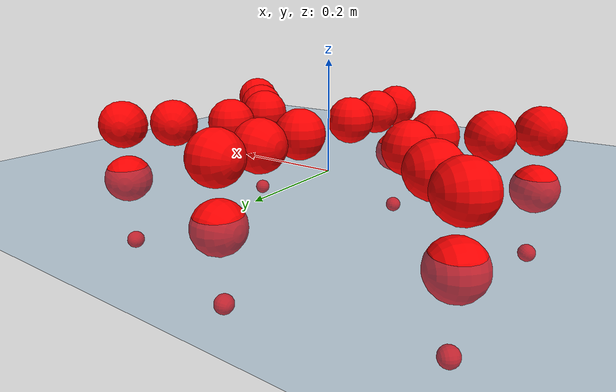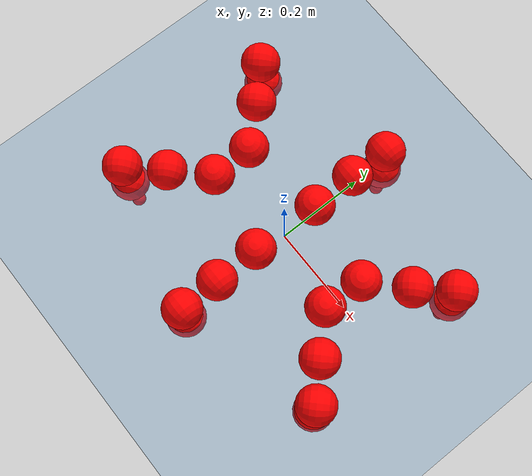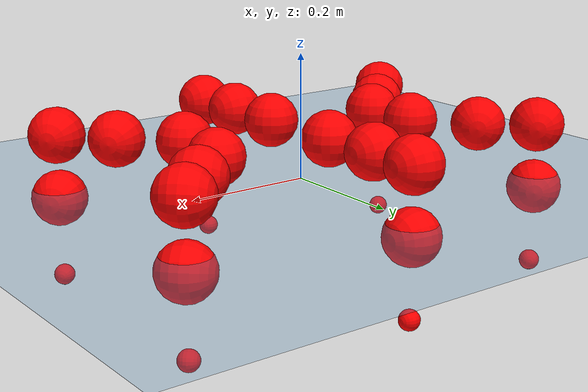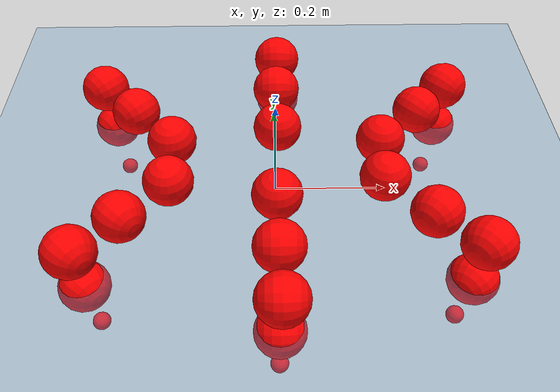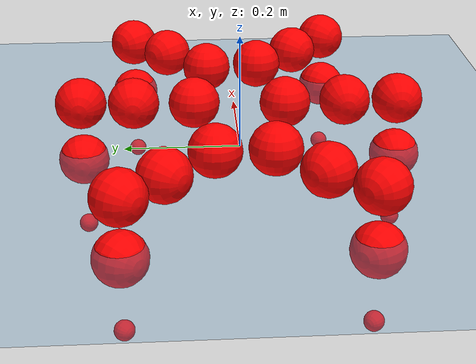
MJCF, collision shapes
<mujoco model="Golem">
  <compiler angle="radian" assetdir="assets" balanceinertia="true" inertiafromgeom="false"/>

  <option timestep="0.005" density="1.2" viscosity="2e-05"/>

  <size nkey="1"/>

  <visual>
    <quality shadowsize="8192"/>
    <map shadowclip="0.5"/>
  </visual>

  <default>
    <default class="/">
      <joint armature="0.01" damping="0.01" frictionloss="0.01"/>
      <geom contype="0" conaffinity="0" group="1" solref="-1000 -80"/>
      <site size="0.01 0.005 0.005" group="5"/>
      <general forcelimited="true" biastype="affine" gainprm="25" biasprm="0 -25 -0.5"/>
      <default class="visual">
        <geom type="mesh" group="2"/>
      </default>
      <default class="collision">
        <geom group="3"/>
      </default>
      <default class="foot">
        <geom size="0.01 0 0" condim="6" group="4" priority="1" solimp="0.015 1 0.01"/>
      </default>
      <default class="reward_collision_sphere">
        <geom group="5" rgba="1 0 0 1"/>
      </default>
    </default>
  </default>

  <asset>
    <texture type="skybox" colorspace="auto" name="//unnamed_texture_0" builtin="gradient" rgb1="0.95 0.95 0.95" rgb2="0.95 0.95 0.95" width="100" height="600"/>
    <texture type="2d" colorspace="auto" name="texplane" builtin="checker" rgb1="0.345 0.575 0.748" rgb2="0.345 0.575 0.748" markrgb="1 1 1" width="512" height="512"/>
    <material name="MatPlane" class="/" texture="texplane" texuniform="true" texrepeat="2 2" specular="0.9"/>
    <mesh name="body" class="/" file="body.stl" scale="0.001 0.001 0.001"/>
    <mesh name="coxa" class="/" file="coxa.stl" scale="0.001 0.001 0.001"/>
    <mesh name="femur" class="/" file="femur.stl" scale="0.001 0.001 0.001"/>
    <mesh name="tibia" class="/" file="tibia.stl" scale="0.001 0.001 0.001"/>
    <mesh name="tarsus" class="/" file="tarsus.stl" scale="0.001 0.001 0.001"/>
  </asset>

  <worldbody>
    <geom name="floor" class="/" size="100 100 0.125" type="plane" group="0" material="MatPlane"/>
    <light name="toplight_shadow" class="/" pos="0 0 5" dir="0.0990148 0.0990148 -0.990148" type="directional" ambient="0.04 0.04 0.04" diffuse="0.55 0.55 0.55" specular="0.12 0.12 0.12"/>
    <light name="toplight_fill" class="/" pos="0 0 5" dir="0.0990148 0.0990148 -0.990148" type="directional" castshadow="false" ambient="0.04 0.04 0.04" diffuse="0.3 0.3 0.3" specular="0.08 0.08 0.08"/>
    <body name="trunk" pos="0.00270394 0.0016109 0.00124468" quat="1 -7.95374e-05 1.12801e-05 -3.99493e-06">
      <inertial pos="-0.00041404 -0.00119083 -0.00128191" quat="0.999996 -0.00208298 0.00163096 0.000639978" mass="4.68505" diaginertia="0.0212357 0.0044445 0.028131"/>
      <joint name="//unnamed_joint_0" type="free"/>
      <geom name="//unnamed_geom_1" class="/" pos="0 0 0.0787209" quat="1 0 0 0" type="mesh" rgba="0.9 0.9 0.9 1" mesh="body"/>
      <site name="imu" class="/" pos="0.166273 0.0135867 0.119726" size="0.0108576"/>
      <camera name="track" class="/" pos="0 -1.70694 0" quat="0.707107 0.707107 0 0" mode="trackcom"/>
      <camera name="ego_camera" class="/" pos="0.152595 0 0.123001" quat="-0.5 -0.5 0.5 0.5"/>
      <body name="coxa_RR" pos="-0.209079 -0.0710989 0.0780536" quat="0.38265 -0.000186091 -4.27846e-05 -0.923894">
        <inertial pos="-0.000140328 -0.00258607 6.28454e-05" quat="0.999938 -0.00382993 0.00169931 0.0103487" mass="0.244254" diaginertia="0.0213942 0.00434293 0.0269355"/>
        <joint name="coxa_joint_RR" class="/" pos="0 0 0" axis="0.000230263 0.00158488 -0.999999" range="-3.13366 3.13425" armature="0.00954092" damping="0" frictionloss="0.0109209"/>
        <geom name="//unnamed_geom_2" class="/" type="mesh" rgba="0.2 0.2 0.2 1" mesh="coxa"/>
        <geom name="//unnamed_geom_3" class="reward_collision_sphere" size="0.0434305" pos="-0.0352141 0 0"/>
        <body name="femur_RR" pos="0.0669142 -0.000242467 -0.00305803" quat="0.499999 -0.499977 0.500025 0.499998">
          <inertial pos="-0.000860493 -0.000127416 -0.000509311" quat="0.999996 0.00261999 -0.000592544 0.00101602" mass="0.256032" diaginertia="0.022247 0.00449027 0.0290275"/>
          <joint name="femur_joint_RR" class="/" pos="0 0 0" axis="0.000898395 0.00447104 -0.99999" range="-3.19372 3.09524" armature="0.0113397" damping="0.00809103" frictionloss="0.0122893"/>
          <geom name="//unnamed_geom_4" class="/" type="mesh" rgba="0.9 0.9 0.9 1" mesh="femur"/>
          <geom name="//unnamed_geom_5" class="reward_collision_sphere" size="0.0434305"/>
          <body name="tibia_RR" pos="-0.00361281 -0.0952614 0.00298427" quat="-0.000584748 0.999999 -0.00107845 -0.00018803">
            <inertial pos="-0.00270662 0.00107966 -0.000563669" quat="0.999996 0.00165037 -0.00223756 -0.000158752" mass="0.258508" diaginertia="0.0219411 0.00447862 0.026944"/>
            <joint name="tibia_joint_RR" class="/" pos="0 0 0" axis="0.00678953 0.0099908 0.999927" range="-3.12844 3.17369" armature="0.0114005" damping="0" frictionloss="0.0109098"/>
            <geom name="//unnamed_geom_6" class="/" type="mesh" rgba="0.2 0.2 0.2 1" mesh="tibia"/>
            <geom name="//unnamed_geom_7" class="reward_collision_sphere" size="0.0434305"/>
            <body name="tarsus_RR" pos="0.104863 4.25672e-05 0.00213684" quat="1 2.37194e-05 3.6242e-05 0.000189852">
              <inertial pos="0.0739798 0.00046813 0.000747973" quat="0.503458 0.499666 0.497052 0.499803" mass="0.25678" diaginertia="0.0221755 0.0045927 0.0284053"/>
              <joint name="tarsus_joint_RR" class="/" pos="0 0 0" axis="-0.00349617 -0.000438738 0.999994" range="-3.19251 3.17751" armature="0.011295" damping="0.0450603" frictionloss="0.0104025"/>
              <geom name="//unnamed_geom_8" class="/" type="mesh" rgba="0.9 0.9 0.9 1" mesh="tarsus"/>
              <geom name="foot_1" class="foot" size="0.0109226" pos="0.131466 0 0" quat="0 -0.707107 0 0.707107"/>
              <geom name="//unnamed_geom_10" class="reward_collision_sphere" size="0.0434305"/>
              <geom name="//unnamed_geom_11" class="reward_collision_sphere" size="0.0162864" pos="0.126184 0 0"/>
              <site name="foot_1" class="foot" pos="0.131466 0 0" quat="0 -0.707107 0 0.707107" size="0.0108576"/>
            </body>
          </body>
        </body>
      </body>
      <body name="coxa_RM" pos="-0.000753394 -0.113852 0.0797021" quat="0.706867 -0.000778184 -0.000345942 -0.707346">
        <inertial pos="0.00245031 -0.000172652 -0.000226389" quat="0.999995 -0.000731828 0.00151658 0.00267699" mass="0.254607" diaginertia="0.0219696 0.00438016 0.0288952"/>
        <joint name="coxa_joint_RM" class="/" pos="0 0 0" axis="-0.000979064 -0.00254324 -0.999996" stiffness="0.00459546" range="-3.13889 3.11981" armature="0.0109257" damping="0.000872632" frictionloss="0.00955396"/>
        <geom name="//unnamed_geom_12" class="/" type="mesh" rgba="0.2 0.2 0.2 1" mesh="coxa"/>
        <geom name="//unnamed_geom_13" class="reward_collision_sphere" size="0.0434305" pos="-0.0352141 0 0"/>
        <body name="femur_RM" pos="0.0678531 0.00227245 0.000106401" quat="0.498873 -0.500623 0.500141 0.500361">
          <inertial pos="-0.00099239 -0.000510252 2.42302e-06" quat="0.999999 -0.00058454 0.000562504 0.000685083" mass="0.26289" diaginertia="0.0230412 0.00452499 0.0290904"/>
          <joint name="femur_joint_RM" class="/" pos="0 0 0" axis="-0.00759357 -0.000605496 -0.999971" stiffness="0.00351429" range="-3.14484 3.14346" armature="0.0104225" damping="0.0223123" frictionloss="0.0108012"/>
          <geom name="//unnamed_geom_14" class="/" type="mesh" rgba="0.9 0.9 0.9 1" mesh="femur"/>
          <geom name="//unnamed_geom_15" class="reward_collision_sphere" size="0.0434305"/>
          <body name="tibia_RM" pos="0.000975022 -0.0915829 0.00238628" quat="-0.000146358 1 -7.70615e-05 0.000122244">
            <inertial pos="0.00216103 -0.00281277 0.000615882" quat="0.999907 -0.00880341 -0.00391743 -0.00965339" mass="0.247626" diaginertia="0.0221929 0.00468092 0.0285384"/>
            <joint name="tibia_joint_RM" class="/" pos="0 0 0" axis="0.000574808 0.000747807 1" range="-3.19443 3.18737" armature="0.0106565" damping="0.0160128" frictionloss="0.0103088"/>
            <geom name="//unnamed_geom_16" class="/" type="mesh" rgba="0.2 0.2 0.2 1" mesh="tibia"/>
            <geom name="//unnamed_geom_17" class="reward_collision_sphere" size="0.0434305"/>
            <body name="tarsus_RM" pos="0.10305 0.000173619 0.00237588" quat="1 -2.0866e-06 -0.000182375 -5.73128e-05">
              <inertial pos="0.0695812 -0.00155392 0.00265051" quat="0.500505 0.508518 0.489794 0.501005" mass="0.263866" diaginertia="0.0214696 0.0044234 0.0271974"/>
              <joint name="tarsus_joint_RM" class="/" pos="0 0 0" axis="-5.19197e-05 0.00199207 0.999998" range="-3.10199 3.15344" armature="0.0111035" damping="0.00630695" frictionloss="0.0107904"/>
              <geom name="//unnamed_geom_18" class="/" type="mesh" rgba="0.9 0.9 0.9 1" mesh="tarsus"/>
              <geom name="foot_2" class="foot" size="0.0105829" pos="0.131466 0 0" quat="0 -0.707107 0 0.707107"/>
              <geom name="//unnamed_geom_20" class="reward_collision_sphere" size="0.0434305"/>
              <geom name="//unnamed_geom_21" class="reward_collision_sphere" size="0.0162864" pos="0.126184 0 0"/>
              <site name="foot_2" class="foot" pos="0.131466 0 0" quat="0 -0.707107 0 0.707107" size="0.0108576"/>
            </body>
          </body>
        </body>
      </body>
      <body name="coxa_RF" pos="0.207875 -0.0683883 0.0814849" quat="0.923833 -4.46277e-05 0.000367652 -0.382796">
        <inertial pos="0.000702293 0.00137685 0.0006644" quat="0.999999 -0.000496278 -0.00095721 -0.00033048" mass="0.253399" diaginertia="0.0222361 0.00447019 0.0277232"/>
        <joint name="coxa_joint_RF" class="/" pos="0 0 0" axis="0.00141316 0.000148607 -0.999999" stiffness="0.000109982" range="-3.12819 3.11974" armature="0.0123004" damping="0.00245365" frictionloss="0.0108947"/>
        <geom name="//unnamed_geom_22" class="/" type="mesh" rgba="0.2 0.2 0.2 1" mesh="coxa"/>
        <geom name="//unnamed_geom_23" class="reward_collision_sphere" size="0.0434305" pos="-0.0352141 0 0"/>
        <body name="femur_RF" pos="0.0704618 -0.000111023 -0.00171332" quat="0.499973 -0.500001 0.500015 0.500011">
          <inertial pos="0.000414542 -0.00207866 0.000541197" quat="0.999998 -0.000239121 -0.0018382 0.000887889" mass="0.254225" diaginertia="0.0222799 0.00438743 0.0288355"/>
          <joint name="femur_joint_RF" class="/" pos="0 0 0" axis="-0.000123503 -9.44315e-05 -1" stiffness="0.00583219" range="-3.19316 3.12749" armature="0.00927143" damping="0.00826802" frictionloss="0.0122087"/>
          <geom name="//unnamed_geom_24" class="/" type="mesh" rgba="0.9 0.9 0.9 1" mesh="femur"/>
          <geom name="//unnamed_geom_25" class="reward_collision_sphere" size="0.0434305"/>
          <body name="tibia_RF" pos="-0.00287252 -0.0934479 0.00193786" quat="0.000138539 1 0.000357631 -3.95393e-05">
            <inertial pos="-0.0023985 -0.000187657 0.00108352" quat="1 -0.000287125 0.000443559 0.000368036" mass="0.261256" diaginertia="0.0215443 0.00456982 0.0278402"/>
            <joint name="tibia_joint_RF" class="/" pos="0 0 0" axis="-0.00843308 -0.00865564 0.999927" range="-3.12155 3.08528" armature="0.0109065" damping="0.0110754" frictionloss="0.0109185"/>
            <geom name="//unnamed_geom_26" class="/" type="mesh" rgba="0.2 0.2 0.2 1" mesh="tibia"/>
            <geom name="//unnamed_geom_27" class="reward_collision_sphere" size="0.0434305"/>
            <body name="tarsus_RF" pos="0.100533 0.00233537 0.00330436" quat="0.999999 -0.00118038 -0.00062096 0.000411342">
              <inertial pos="0.0701015 -0.000990484 0.000264197" quat="0.50044 0.498961 0.501729 0.498864" mass="0.257279" diaginertia="0.022009 0.00459364 0.0287229"/>
              <joint name="tarsus_joint_RF" class="/" pos="0 0 0" axis="-0.0111856 -0.00280972 0.999933" range="-3.14239 3.15689" armature="0.0117456" damping="0.0104723" frictionloss="0.0102974"/>
              <geom name="//unnamed_geom_28" class="/" type="mesh" rgba="0.9 0.9 0.9 1" mesh="tarsus"/>
              <geom name="foot_3" class="foot" size="0.0117288" pos="0.131466 0 0" quat="0 -0.707107 0 0.707107"/>
              <geom name="//unnamed_geom_30" class="reward_collision_sphere" size="0.0434305"/>
              <geom name="//unnamed_geom_31" class="reward_collision_sphere" size="0.0162864" pos="0.126184 0 0"/>
              <site name="foot_3" class="foot" pos="0.131466 0 0" quat="0 -0.707107 0 0.707107" size="0.0108576"/>
            </body>
          </body>
        </body>
      </body>
      <body name="coxa_LR" pos="-0.211372 0.0732967 0.0783774" quat="0.382693 8.67362e-05 -5.38968e-05 0.923876">
        <inertial pos="-0.0025839 0.000648005 -0.001847" quat="0.999912 0.00813156 0.0024837 -0.0101753" mass="0.256405" diaginertia="0.0230803 0.00480049 0.0287935"/>
        <joint name="coxa_joint_LR" class="/" pos="0 0 0" axis="0.00420127 -0.0160206 -0.999863" stiffness="0.00567452" range="-3.12363 3.11599" armature="0.0100114" damping="0.0102292" frictionloss="0.00946663"/>
        <geom name="//unnamed_geom_32" class="/" type="mesh" rgba="0.2 0.2 0.2 1" mesh="coxa"/>
        <geom name="//unnamed_geom_33" class="reward_collision_sphere" size="0.0434305" pos="-0.0352141 0 0"/>
        <body name="femur_LR" pos="0.073215 -0.00268169 -0.00257376" quat="0.499953 -0.5 0.500026 0.500021">
          <inertial pos="-0.000131831 -0.000448015 -1.08895e-05" quat="0.999977 0.00523403 0.00300616 -0.00310367" mass="0.256142" diaginertia="0.0224599 0.00470611 0.0283711"/>
          <joint name="femur_joint_LR" class="/" pos="0 0 0" axis="-0.00439339 -0.00824671 0.999956" range="-3.15264 3.13776" armature="0.0102557" damping="0.00268868" frictionloss="0.00945839"/>
          <geom name="//unnamed_geom_34" class="/" type="mesh" rgba="0.9 0.9 0.9 1" mesh="femur"/>
          <geom name="//unnamed_geom_35" class="reward_collision_sphere" size="0.0434305"/>
          <body name="tibia_LR" pos="-0.00134215 -0.0931573 0.00196799" quat="-0.000910212 0.999999 0.00034247 -0.00104146">
            <inertial pos="0.000144717 0.000503066 -2.98176e-05" quat="0.999987 0.00142374 0.00462017 0.00136832" mass="0.25776" diaginertia="0.0226392 0.00462392 0.028729"/>
            <joint name="tibia_joint_LR" class="/" pos="0 0 0" axis="-0.00394617 0.00170579 -0.999991" range="-3.16211 3.08831" armature="0.0109231" damping="0.0088412" frictionloss="0.0108295"/>
            <geom name="//unnamed_geom_36" class="/" type="mesh" rgba="0.2 0.2 0.2 1" mesh="tibia"/>
            <geom name="//unnamed_geom_37" class="reward_collision_sphere" size="0.0434305"/>
            <body name="tarsus_LR" pos="0.101855 0.000251963 0.00290878" quat="0.999999 0.00129963 0.000410628 -0.000433165">
              <inertial pos="0.0739457 0.000469225 -0.00247722" quat="0.499802 0.499636 0.499768 0.500793" mass="0.248482" diaginertia="0.0220884 0.00437174 0.0280062"/>
              <joint name="tarsus_joint_LR" class="/" pos="0 0 0" axis="0.00978794 0.00167927 -0.999951" stiffness="0.000462168" range="-3.19294 3.0859" armature="0.010647" damping="0" frictionloss="0.010738"/>
              <geom name="//unnamed_geom_38" class="/" type="mesh" rgba="0.9 0.9 0.9 1" mesh="tarsus"/>
              <geom name="foot_4" class="foot" size="0.0115765" pos="0.131466 0 0" quat="0.707107 0 -0.707107 0"/>
              <geom name="//unnamed_geom_40" class="reward_collision_sphere" size="0.0434305"/>
              <geom name="//unnamed_geom_41" class="reward_collision_sphere" size="0.0162864" pos="0.126184 0 0"/>
              <site name="foot_4" class="foot" pos="0.131466 0 0" quat="0.707107 0 -0.707107 0" size="0.0108576"/>
            </body>
          </body>
        </body>
      </body>
      <body name="coxa_LM" pos="0.00220112 0.111701 0.0809277" quat="0.707372 0.000532402 -4.29472e-06 0.706841">
        <inertial pos="-0.000549667 0.000113043 -9.43172e-05" quat="0.999954 0.00857382 -0.00363379 -0.00232292" mass="0.25685" diaginertia="0.021971 0.0044955 0.0281563"/>
        <joint name="coxa_joint_LM" class="/" pos="0 0 0" axis="0.00498923 0.00164408 -0.999986" range="-3.08629 3.14025" armature="0.011242" damping="0.0153819" frictionloss="0.0122398"/>
        <geom name="//unnamed_geom_42" class="/" type="mesh" rgba="0.2 0.2 0.2 1" mesh="coxa"/>
        <geom name="//unnamed_geom_43" class="reward_collision_sphere" size="0.0434305" pos="-0.0352141 0 0"/>
        <body name="femur_LM" pos="0.0675748 0.000973947 0.00142487" quat="0.500647 -0.50013 0.49992 0.499302">
          <inertial pos="0.000781685 -0.00286681 0.00254435" quat="0.999908 -0.00471145 -0.0111635 -0.00607285" mass="0.253679" diaginertia="0.0223722 0.00434673 0.0278636"/>
          <joint name="femur_joint_LM" class="/" pos="0 0 0" axis="0.00457649 -0.0111402 0.999927" range="-3.13656 3.08783" armature="0.0116133" damping="0.00251283" frictionloss="0.0106811"/>
          <geom name="//unnamed_geom_44" class="/" type="mesh" rgba="0.9 0.9 0.9 1" mesh="femur"/>
          <geom name="//unnamed_geom_45" class="reward_collision_sphere" size="0.0434305"/>
          <body name="tibia_LM" pos="-0.000924097 -0.0892966 -0.00227795" quat="-0.000395958 0.999999 0.00073293 -0.00105265">
            <inertial pos="-0.000917217 -0.00334134 -0.00038744" quat="0.99995 0.00365205 0.00810412 -0.00449541" mass="0.256165" diaginertia="0.0221722 0.00467968 0.0280076"/>
            <joint name="tibia_joint_LM" class="/" pos="0 0 0" axis="-0.00352144 0.00388814 -0.999986" range="-3.13902 3.12786" armature="0.0122113" damping="0" frictionloss="0.0101958"/>
            <geom name="//unnamed_geom_46" class="/" type="mesh" rgba="0.2 0.2 0.2 1" mesh="tibia"/>
            <geom name="//unnamed_geom_47" class="reward_collision_sphere" size="0.0434305"/>
            <body name="tarsus_LM" pos="0.105553 0.000551701 0.00143042" quat="0.999999 0.000153104 0.000857643 -0.000852014">
              <inertial pos="0.0683786 -0.000303048 -0.0011295" quat="0.500055 0.500305 0.499922 0.499718" mass="0.254303" diaginertia="0.0215326 0.004441 0.0280587"/>
              <joint name="tarsus_joint_LM" class="/" pos="0 0 0" axis="-0.00159489 0.00045193 -0.999999" range="-3.08798 3.12001" armature="0.012349" damping="0.00156605" frictionloss="0.0109639"/>
              <geom name="//unnamed_geom_48" class="/" type="mesh" rgba="0.9 0.9 0.9 1" mesh="tarsus"/>
              <geom name="foot_5" class="foot" size="0.0110025" pos="0.131466 0 0" quat="0.707107 0 -0.707107 0"/>
              <geom name="//unnamed_geom_50" class="reward_collision_sphere" size="0.0434305"/>
              <geom name="//unnamed_geom_51" class="reward_collision_sphere" size="0.0162864" pos="0.126184 0 0"/>
              <site name="foot_5" class="foot" pos="0.131466 0 0" quat="0.707107 0 -0.707107 0" size="0.0108576"/>
            </body>
          </body>
        </body>
      </body>
      <body name="coxa_LF" pos="0.211534 0.0742313 0.0761782" quat="0.923916 0.000260358 8.68554e-05 0.382595">
        <inertial pos="-8.35354e-05 0.000117023 1.56841e-05" quat="0.999942 0.00411046 -0.00217624 0.00973229" mass="0.242814" diaginertia="0.0215913 0.00438309 0.027513"/>
        <joint name="coxa_joint_LF" class="/" pos="0 0 0" axis="-8.36304e-05 -0.00388269 -0.999992" stiffness="0.00434299" range="-3.15153 3.18929" armature="0.0122188" damping="0.00535786" frictionloss="0.00973941"/>
        <geom name="//unnamed_geom_52" class="/" type="mesh" rgba="0.2 0.2 0.2 1" mesh="coxa"/>
        <geom name="//unnamed_geom_53" class="reward_collision_sphere" size="0.0434305" pos="-0.0352141 0 0"/>
        <body name="femur_LF" pos="0.0707388 -0.00230987 0.00140687" quat="0.499455 -0.500248 0.499335 0.50096">
          <inertial pos="0.00257174 -0.000247155 0.000162851" quat="0.999991 0.00137814 0.001175 0.00379716" mass="0.261727" diaginertia="0.0225275 0.00454928 0.0277363"/>
          <joint name="femur_joint_LF" class="/" pos="0 0 0" axis="0.000275492 -0.000157606 1" range="-3.10346 3.11749" armature="0.0123449" damping="0.0184039" frictionloss="0.0113574"/>
          <geom name="//unnamed_geom_54" class="/" type="mesh" rgba="0.9 0.9 0.9 1" mesh="femur"/>
          <geom name="//unnamed_geom_55" class="reward_collision_sphere" size="0.0434305"/>
          <body name="tibia_LF" pos="-0.000992948 -0.0901935 0.00265522" quat="-1.06983e-05 1 -1.64667e-05 -2.8909e-05">
            <inertial pos="-7.60673e-05 0.00255671 0.000475728" quat="0.999993 0.00319118 -0.00154835 0.00101885" mass="0.25293" diaginertia="0.0224131 0.00450851 0.0280306"/>
            <joint name="tibia_joint_LF" class="/" pos="0 0 0" axis="0.000156468 0.00527061 -0.999986" range="-3.14027 3.13659" armature="0.00980583" damping="0" frictionloss="0.0114183"/>
            <geom name="//unnamed_geom_56" class="/" type="mesh" rgba="0.2 0.2 0.2 1" mesh="tibia"/>
            <geom name="//unnamed_geom_57" class="reward_collision_sphere" size="0.0434305"/>
            <body name="tarsus_LF" pos="0.103787 0.00142474 0.000652886" quat="0.999999 0.000232615 -0.000468596 0.00126248">
              <inertial pos="0.0720117 0.000364926 -0.000843281" quat="0.490897 0.499302 0.505776 0.503893" mass="0.257563" diaginertia="0.022061 0.00462932 0.0282316"/>
              <joint name="tarsus_joint_LF" class="/" pos="0 0 0" axis="-0.000267059 0.00421887 -0.999991" stiffness="0.0238516" range="-3.18798 3.15451" armature="0.0106763" damping="0.0275261" frictionloss="0.0108762"/>
              <geom name="//unnamed_geom_58" class="/" type="mesh" rgba="0.9 0.9 0.9 1" mesh="tarsus"/>
              <geom name="foot_6" class="foot" size="0.0106512" pos="0.131466 0 0" quat="0.707107 0 -0.707107 0"/>
              <geom name="//unnamed_geom_60" class="reward_collision_sphere" size="0.0434305"/>
              <geom name="//unnamed_geom_61" class="reward_collision_sphere" size="0.0162864" pos="0.126184 0 0"/>
              <site name="foot_6" class="foot" pos="0.131466 0 0" quat="0.707107 0 -0.707107 0" size="0.0108576"/>
            </body>
          </body>
        </body>
      </body>
    </body>
  </worldbody>

  <contact>
    <pair class="/" geom1="floor" geom2="foot_1" name="//unnamed_contact_0"/>
    <pair class="/" geom1="floor" geom2="foot_2" name="//unnamed_contact_1"/>
    <pair class="/" geom1="floor" geom2="foot_3" name="//unnamed_contact_2"/>
    <pair class="/" geom1="floor" geom2="foot_4" name="//unnamed_contact_3"/>
    <pair class="/" geom1="floor" geom2="foot_5" name="//unnamed_contact_4"/>
    <pair class="/" geom1="floor" geom2="foot_6" name="//unnamed_contact_5"/>
  </contact>

  <actuator>
    <general name="coxa_joint_RR" class="/" joint="coxa_joint_RR" forcerange="-7.77833 7.77833" gainprm="25.8351" biasprm="0 -25.8351 -0.591659"/>
    <general name="femur_joint_RR" class="/" joint="femur_joint_RR" forcerange="-7.87386 7.87386" gainprm="25.8351" biasprm="0 -25.8351 -0.591659"/>
    <general name="tibia_joint_RR" class="/" joint="tibia_joint_RR" forcerange="-7.89034 7.89034" gainprm="25.8351" biasprm="0 -25.8351 -0.591659"/>
    <general name="tarsus_joint_RR" class="/" joint="tarsus_joint_RR" forcerange="-8.65122 8.65122" gainprm="25.8351" biasprm="0 -25.8351 -0.591659"/>
    <general name="coxa_joint_RM" class="/" joint="coxa_joint_RM" forcerange="-7.13694 7.13694" gainprm="25.8351" biasprm="0 -25.8351 -0.591659"/>
    <general name="femur_joint_RM" class="/" joint="femur_joint_RM" forcerange="-8.24628 8.24628" gainprm="25.8351" biasprm="0 -25.8351 -0.591659"/>
    <general name="tibia_joint_RM" class="/" joint="tibia_joint_RM" forcerange="-7.40235 7.40235" gainprm="25.8351" biasprm="0 -25.8351 -0.591659"/>
    <general name="tarsus_joint_RM" class="/" joint="tarsus_joint_RM" forcerange="-7.81879 7.81879" gainprm="25.8351" biasprm="0 -25.8351 -0.591659"/>
    <general name="coxa_joint_RF" class="/" joint="coxa_joint_RF" forcerange="-7.11516 7.11516" gainprm="25.8351" biasprm="0 -25.8351 -0.591659"/>
    <general name="femur_joint_RF" class="/" joint="femur_joint_RF" forcerange="-7.52964 7.52964" gainprm="25.8351" biasprm="0 -25.8351 -0.591659"/>
    <general name="tibia_joint_RF" class="/" joint="tibia_joint_RF" forcerange="-7.16416 7.16416" gainprm="25.8351" biasprm="0 -25.8351 -0.591659"/>
    <general name="tarsus_joint_RF" class="/" joint="tarsus_joint_RF" forcerange="-8.25783 8.25783" gainprm="25.8351" biasprm="0 -25.8351 -0.591659"/>
    <general name="coxa_joint_LR" class="/" joint="coxa_joint_LR" forcerange="-7.92237 7.92237" gainprm="25.8351" biasprm="0 -25.8351 -0.591659"/>
    <general name="femur_joint_LR" class="/" joint="femur_joint_LR" forcerange="-8.05362 8.05362" gainprm="25.8351" biasprm="0 -25.8351 -0.591659"/>
    <general name="tibia_joint_LR" class="/" joint="tibia_joint_LR" forcerange="-7.80062 7.80062" gainprm="25.8351" biasprm="0 -25.8351 -0.591659"/>
    <general name="tarsus_joint_LR" class="/" joint="tarsus_joint_LR" forcerange="-7.87255 7.87255" gainprm="25.8351" biasprm="0 -25.8351 -0.591659"/>
    <general name="coxa_joint_LM" class="/" joint="coxa_joint_LM" forcerange="-8.70656 8.70656" gainprm="25.8351" biasprm="0 -25.8351 -0.591659"/>
    <general name="femur_joint_LM" class="/" joint="femur_joint_LM" forcerange="-7.91081 7.91081" gainprm="25.8351" biasprm="0 -25.8351 -0.591659"/>
    <general name="tibia_joint_LM" class="/" joint="tibia_joint_LM" forcerange="-8.00207 8.00207" gainprm="25.8351" biasprm="0 -25.8351 -0.591659"/>
    <general name="tarsus_joint_LM" class="/" joint="tarsus_joint_LM" forcerange="-8.04245 8.04245" gainprm="25.8351" biasprm="0 -25.8351 -0.591659"/>
    <general name="coxa_joint_LF" class="/" joint="coxa_joint_LF" forcerange="-7.18245 7.18245" gainprm="25.8351" biasprm="0 -25.8351 -0.591659"/>
    <general name="femur_joint_LF" class="/" joint="femur_joint_LF" forcerange="-8.07534 8.07534" gainprm="25.8351" biasprm="0 -25.8351 -0.591659"/>
    <general name="tibia_joint_LF" class="/" joint="tibia_joint_LF" forcerange="-7.61777 7.61777" gainprm="25.8351" biasprm="0 -25.8351 -0.591659"/>
    <general name="tarsus_joint_LF" class="/" joint="tarsus_joint_LF" forcerange="-7.51642 7.51642" gainprm="25.8351" biasprm="0 -25.8351 -0.591659"/>
  </actuator>

  <sensor>
    <gyro site="imu" name="imu_angular_velocity"/>
    <velocimeter site="imu" name="imu_linear_velocity"/>
    <framelinvel objtype="site" objname="foot_1" name="foot_1_global_linear_velocity"/>
    <framelinvel objtype="site" objname="foot_2" name="foot_2_global_linear_velocity"/>
    <framelinvel objtype="site" objname="foot_3" name="foot_3_global_linear_velocity"/>
    <framelinvel objtype="site" objname="foot_4" name="foot_4_global_linear_velocity"/>
    <framelinvel objtype="site" objname="foot_5" name="foot_5_global_linear_velocity"/>
    <framelinvel objtype="site" objname="foot_6" name="foot_6_global_linear_velocity"/>
  </sensor>

  <keyframe>
    <key name="home" qpos="0 0 0.1457 1 0 0 0 0 0 0 0 0 0 0 0 0 0 0 0 0 0 0 0 0 0 0 0 0 0 0 0"/>
  </keyframe>
</mujoco>
